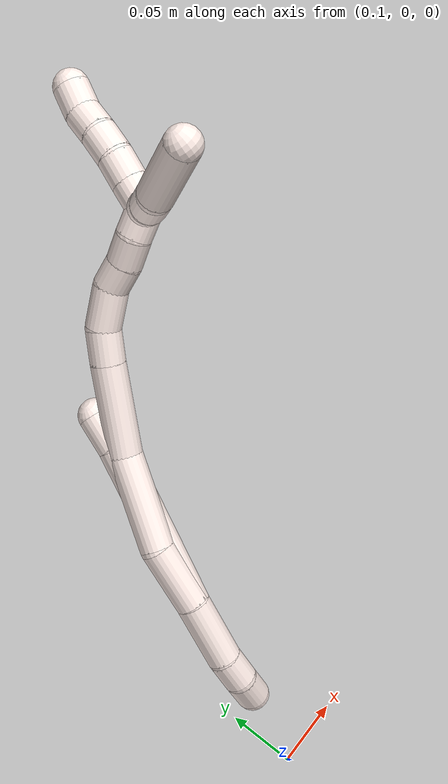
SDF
<sdf version="1.7">
 <world name="default">
  <model name="11">
   <static>0</static>
   <link name="11">
    <collision name="collision-cylinder-e_1_2_8">
     <pose>0.001236 -0.019116 0.036158 0.486339 0.030211 0.007495</pose>
     <geometry><cylinder><radius>0.0125</radius><length>0.081838</length></cylinder></geometry>
     <surface>
      <friction><ode><mu>1.16</mu><mu2>1.16</mu2><slip1>0</slip1><slip2>0</slip2></ode></friction>
      <contact><ode><kp>1e+06</kp><kd>1</kd><max_vel>0</max_vel><min_depth>0.001</min_depth></ode></contact>
     </surface>
    </collision>
    <visual name="visual-cylinder-e_1_2_8">
     <pose>0.001236 -0.019116 0.036158 0.486339 0.030211 0.007495</pose>
     <geometry><cylinder><radius>0.0125</radius><length>0.081838</length></cylinder></geometry>
     <material><ambient>1 0.933333 0.909804 1</ambient></material>
    </visual>
    <collision name="collision-cylinder-e_2_8_9">
     <pose>0.003192 -0.047939 0.090693 0.485926 0.034608 0.008579</pose>
     <geometry><cylinder><radius>0.0125</radius><length>0.04159</length></cylinder></geometry>
     <surface>
      <friction><ode><mu>1.16</mu><mu2>1.16</mu2><slip1>0</slip1><slip2>0</slip2></ode></friction>
      <contact><ode><kp>1e+06</kp><kd>1</kd><max_vel>0</max_vel><min_depth>0.001</min_depth></ode></contact>
     </surface>
    </collision>
    <visual name="visual-cylinder-e_2_8_9">
     <pose>0.003192 -0.047939 0.090693 0.485926 0.034608 0.008579</pose>
     <geometry><cylinder><radius>0.0125</radius><length>0.04159</length></cylinder></geometry>
     <material><ambient>1 0.933333 0.909804 1</ambient></material>
    </visual>
    <collision name="collision-cylinder-e_3_9_6">
     <pose>0.006509 -0.064724 0.120008 0.5744 0.196776 0.058293</pose>
     <geometry><cylinder><radius>0.0125</radius><length>0.026572</length></cylinder></geometry>
     <surface>
      <friction><ode><mu>1.16</mu><mu2>1.16</mu2><slip1>0</slip1><slip2>0</slip2></ode></friction>
      <contact><ode><kp>1e+06</kp><kd>1</kd><max_vel>0</max_vel><min_depth>0.001</min_depth></ode></contact>
     </surface>
    </collision>
    <visual name="visual-cylinder-e_3_9_6">
     <pose>0.006509 -0.064724 0.120008 0.5744 0.196776 0.058293</pose>
     <geometry><cylinder><radius>0.0125</radius><length>0.026572</length></cylinder></geometry>
     <material><ambient>1 0.933333 0.909804 1</ambient></material>
    </visual>
    <collision name="collision-cylinder-e_1_2_10">
     <pose>0.00115 0.006434 -0.024463 -2.8844 0.045418 -0.347739</pose>
     <geometry><cylinder><radius>0.0125</radius><length>0.050643</length></cylinder></geometry>
     <surface>
      <friction><ode><mu>1.16</mu><mu2>1.16</mu2><slip1>0</slip1><slip2>0</slip2></ode></friction>
      <contact><ode><kp>1e+06</kp><kd>1</kd><max_vel>0</max_vel><min_depth>0.001</min_depth></ode></contact>
     </surface>
    </collision>
    <visual name="visual-cylinder-e_1_2_10">
     <pose>0.00115 0.006434 -0.024463 -2.8844 0.045418 -0.347739</pose>
     <geometry><cylinder><radius>0.0125</radius><length>0.050643</length></cylinder></geometry>
     <material><ambient>1 0.933333 0.909804 1</ambient></material>
    </visual>
    <collision name="collision-cylinder-e_2_10_11">
     <pose>0.002708 0.013927 -0.060869 -3.05318 0.034104 -0.735901</pose>
     <geometry><cylinder><radius>0.0125</radius><length>0.023992</length></cylinder></geometry>
     <surface>
      <friction><ode><mu>1.16</mu><mu2>1.16</mu2><slip1>0</slip1><slip2>0</slip2></ode></friction>
      <contact><ode><kp>1e+06</kp><kd>1</kd><max_vel>0</max_vel><min_depth>0.001</min_depth></ode></contact>
     </surface>
    </collision>
    <visual name="visual-cylinder-e_2_10_11">
     <pose>0.002708 0.013927 -0.060869 -3.05318 0.034104 -0.735901</pose>
     <geometry><cylinder><radius>0.0125</radius><length>0.023992</length></cylinder></geometry>
     <material><ambient>1 0.933333 0.909804 1</ambient></material>
    </visual>
    <collision name="collision-cylinder-e_3_11_5">
     <pose>0.005557 0.013061 -0.085107 2.98633 0.193542 1.79048</pose>
     <geometry><cylinder><radius>0.0125</radius><length>0.025366</length></cylinder></geometry>
     <surface>
      <friction><ode><mu>1.16</mu><mu2>1.16</mu2><slip1>0</slip1><slip2>0</slip2></ode></friction>
      <contact><ode><kp>1e+06</kp><kd>1</kd><max_vel>0</max_vel><min_depth>0.001</min_depth></ode></contact>
     </surface>
    </collision>
    <visual name="visual-cylinder-e_3_11_5">
     <pose>0.005557 0.013061 -0.085107 2.98633 0.193542 1.79048</pose>
     <geometry><cylinder><radius>0.0125</radius><length>0.025366</length></cylinder></geometry>
     <material><ambient>1 0.933333 0.909804 1</ambient></material>
    </visual>
    <collision name="collision-cylinder-e_1_2_12">
     <pose>0.001237 -0.007577 0.022953 0.318833 0.051143 0.008224</pose>
     <geometry><cylinder><radius>0.0125</radius><length>0.048405</length></cylinder></geometry>
     <surface>
      <friction><ode><mu>1.16</mu><mu2>1.16</mu2><slip1>0</slip1><slip2>0</slip2></ode></friction>
      <contact><ode><kp>1e+06</kp><kd>1</kd><max_vel>0</max_vel><min_depth>0.001</min_depth></ode></contact>
     </surface>
    </collision>
    <visual name="visual-cylinder-e_1_2_12">
     <pose>0.001237 -0.007577 0.022953 0.318833 0.051143 0.008224</pose>
     <geometry><cylinder><radius>0.0125</radius><length>0.048405</length></cylinder></geometry>
     <material><ambient>1 0.933333 0.909804 1</ambient></material>
    </visual>
    <collision name="collision-cylinder-e_2_12_13">
     <pose>0.000517 -0.034317 0.074768 0.58613 -0.056453 -0.017039</pose>
     <geometry><cylinder><radius>0.0125</radius><length>0.069402</length></cylinder></geometry>
     <surface>
      <friction><ode><mu>1.16</mu><mu2>1.16</mu2><slip1>0</slip1><slip2>0</slip2></ode></friction>
      <contact><ode><kp>1e+06</kp><kd>1</kd><max_vel>0</max_vel><min_depth>0.001</min_depth></ode></contact>
     </surface>
    </collision>
    <visual name="visual-cylinder-e_2_12_13">
     <pose>0.000517 -0.034317 0.074768 0.58613 -0.056453 -0.017039</pose>
     <geometry><cylinder><radius>0.0125</radius><length>0.069402</length></cylinder></geometry>
     <material><ambient>1 0.933333 0.909804 1</ambient></material>
    </visual>
    <collision name="collision-cylinder-e_3_13_14">
     <pose>-0.011155 -0.067713 0.132278 0.461076 -0.294833 -0.069678</pose>
     <geometry><cylinder><radius>0.0125</radius><length>0.066859</length></cylinder></geometry>
     <surface>
      <friction><ode><mu>1.16</mu><mu2>1.16</mu2><slip1>0</slip1><slip2>0</slip2></ode></friction>
      <contact><ode><kp>1e+06</kp><kd>1</kd><max_vel>0</max_vel><min_depth>0.001</min_depth></ode></contact>
     </surface>
    </collision>
    <visual name="visual-cylinder-e_3_13_14">
     <pose>-0.011155 -0.067713 0.132278 0.461076 -0.294833 -0.069678</pose>
     <geometry><cylinder><radius>0.0125</radius><length>0.066859</length></cylinder></geometry>
     <material><ambient>1 0.933333 0.909804 1</ambient></material>
    </visual>
    <collision name="collision-cylinder-e_4_14_15">
     <pose>-0.024982 -0.087069 0.171207 0.462421 -0.343724 -0.08168</pose>
     <geometry><cylinder><radius>0.0125</radius><length>0.024405</length></cylinder></geometry>
     <surface>
      <friction><ode><mu>1.16</mu><mu2>1.16</mu2><slip1>0</slip1><slip2>0</slip2></ode></friction>
      <contact><ode><kp>1e+06</kp><kd>1</kd><max_vel>0</max_vel><min_depth>0.001</min_depth></ode></contact>
     </surface>
    </collision>
    <visual name="visual-cylinder-e_4_14_15">
     <pose>-0.024982 -0.087069 0.171207 0.462421 -0.343724 -0.08168</pose>
     <geometry><cylinder><radius>0.0125</radius><length>0.024405</length></cylinder></geometry>
     <material><ambient>1 0.933333 0.909804 1</ambient></material>
    </visual>
    <collision name="collision-cylinder-e_5_15_16">
     <pose>-0.03848 -0.097895 0.191743 0.507354 -0.674774 -0.181399</pose>
     <geometry><cylinder><radius>0.0125</radius><length>0.030048</length></cylinder></geometry>
     <surface>
      <friction><ode><mu>1.16</mu><mu2>1.16</mu2><slip1>0</slip1><slip2>0</slip2></ode></friction>
      <contact><ode><kp>1e+06</kp><kd>1</kd><max_vel>0</max_vel><min_depth>0.001</min_depth></ode></contact>
     </surface>
    </collision>
    <visual name="visual-cylinder-e_5_15_16">
     <pose>-0.03848 -0.097895 0.191743 0.507354 -0.674774 -0.181399</pose>
     <geometry><cylinder><radius>0.0125</radius><length>0.030048</length></cylinder></geometry>
     <material><ambient>1 0.933333 0.909804 1</ambient></material>
    </visual>
    <collision name="collision-cylinder-e_6_16_17">
     <pose>-0.056388 -0.105583 0.206971 0.380287 -1.0096 -0.211901</pose>
     <geometry><cylinder><radius>0.0125</radius><length>0.020134</length></cylinder></geometry>
     <surface>
      <friction><ode><mu>1.16</mu><mu2>1.16</mu2><slip1>0</slip1><slip2>0</slip2></ode></friction>
      <contact><ode><kp>1e+06</kp><kd>1</kd><max_vel>0</max_vel><min_depth>0.001</min_depth></ode></contact>
     </surface>
    </collision>
    <visual name="visual-cylinder-e_6_16_17">
     <pose>-0.056388 -0.105583 0.206971 0.380287 -1.0096 -0.211901</pose>
     <geometry><cylinder><radius>0.0125</radius><length>0.020134</length></cylinder></geometry>
     <material><ambient>1 0.933333 0.909804 1</ambient></material>
    </visual>
    <collision name="collision-cylinder-e_7_17_18">
     <pose>-0.07275 -0.109645 0.218389 0.311266 -0.858554 -0.143396</pose>
     <geometry><cylinder><radius>0.0125</radius><length>0.020713</length></cylinder></geometry>
     <surface>
      <friction><ode><mu>1.16</mu><mu2>1.16</mu2><slip1>0</slip1><slip2>0</slip2></ode></friction>
      <contact><ode><kp>1e+06</kp><kd>1</kd><max_vel>0</max_vel><min_depth>0.001</min_depth></ode></contact>
     </surface>
    </collision>
    <visual name="visual-cylinder-e_7_17_18">
     <pose>-0.07275 -0.109645 0.218389 0.311266 -0.858554 -0.143396</pose>
     <geometry><cylinder><radius>0.0125</radius><length>0.020713</length></cylinder></geometry>
     <material><ambient>1 0.933333 0.909804 1</ambient></material>
    </visual>
    <collision name="collision-cylinder-e_8_18_1">
     <pose>-0.088117 -0.115491 0.230257 0.607698 -0.850404 -0.28209</pose>
     <geometry><cylinder><radius>0.0125</radius><length>0.020034</length></cylinder></geometry>
     <surface>
      <friction><ode><mu>1.16</mu><mu2>1.16</mu2><slip1>0</slip1><slip2>0</slip2></ode></friction>
      <contact><ode><kp>1e+06</kp><kd>1</kd><max_vel>0</max_vel><min_depth>0.001</min_depth></ode></contact>
     </surface>
    </collision>
    <visual name="visual-cylinder-e_8_18_1">
     <pose>-0.088117 -0.115491 0.230257 0.607698 -0.850404 -0.28209</pose>
     <geometry><cylinder><radius>0.0125</radius><length>0.020034</length></cylinder></geometry>
     <material><ambient>1 0.933333 0.909804 1</ambient></material>
    </visual>
    <collision name="collision-cylinder-e_1_1_19">
     <pose>-0.093195 -0.12566 0.242968 0.720546 0.247546 0.093665</pose>
     <geometry><cylinder><radius>0.0125</radius><length>0.02</length></cylinder></geometry>
     <surface>
      <friction><ode><mu>1.16</mu><mu2>1.16</mu2><slip1>0</slip1><slip2>0</slip2></ode></friction>
      <contact><ode><kp>1e+06</kp><kd>1</kd><max_vel>0</max_vel><min_depth>0.001</min_depth></ode></contact>
     </surface>
    </collision>
    <visual name="visual-cylinder-e_1_1_19">
     <pose>-0.093195 -0.12566 0.242968 0.720546 0.247546 0.093665</pose>
     <geometry><cylinder><radius>0.0125</radius><length>0.02</length></cylinder></geometry>
     <material><ambient>1 0.933333 0.909804 1</ambient></material>
    </visual>
    <collision name="collision-cylinder-e_2_19_20">
     <pose>-0.088795 -0.138017 0.258043 0.653083 0.196228 0.066645</pose>
     <geometry><cylinder><radius>0.0125</radius><length>0.02</length></cylinder></geometry>
     <surface>
      <friction><ode><mu>1.16</mu><mu2>1.16</mu2><slip1>0</slip1><slip2>0</slip2></ode></friction>
      <contact><ode><kp>1e+06</kp><kd>1</kd><max_vel>0</max_vel><min_depth>0.001</min_depth></ode></contact>
     </surface>
    </collision>
    <visual name="visual-cylinder-e_2_19_20">
     <pose>-0.088795 -0.138017 0.258043 0.653083 0.196228 0.066645</pose>
     <geometry><cylinder><radius>0.0125</radius><length>0.02</length></cylinder></geometry>
     <material><ambient>1 0.933333 0.909804 1</ambient></material>
    </visual>
    <collision name="collision-cylinder-e_3_20_21">
     <pose>-0.083541 -0.150584 0.272572 0.77548 0.336747 0.138625</pose>
     <geometry><cylinder><radius>0.0125</radius><length>0.02</length></cylinder></geometry>
     <surface>
      <friction><ode><mu>1.16</mu><mu2>1.16</mu2><slip1>0</slip1><slip2>0</slip2></ode></friction>
      <contact><ode><kp>1e+06</kp><kd>1</kd><max_vel>0</max_vel><min_depth>0.001</min_depth></ode></contact>
     </surface>
    </collision>
    <visual name="visual-cylinder-e_3_20_21">
     <pose>-0.083541 -0.150584 0.272572 0.77548 0.336747 0.138625</pose>
     <geometry><cylinder><radius>0.0125</radius><length>0.02</length></cylinder></geometry>
     <material><ambient>1 0.933333 0.909804 1</ambient></material>
    </visual>
    <collision name="collision-cylinder-e_4_21_22">
     <pose>-0.076052 -0.164433 0.284794 0.922774 0.431782 0.217213</pose>
     <geometry><cylinder><radius>0.0125</radius><length>0.02</length></cylinder></geometry>
     <surface>
      <friction><ode><mu>1.16</mu><mu2>1.16</mu2><slip1>0</slip1><slip2>0</slip2></ode></friction>
      <contact><ode><kp>1e+06</kp><kd>1</kd><max_vel>0</max_vel><min_depth>0.001</min_depth></ode></contact>
     </surface>
    </collision>
    <visual name="visual-cylinder-e_4_21_22">
     <pose>-0.076052 -0.164433 0.284794 0.922774 0.431782 0.217213</pose>
     <geometry><cylinder><radius>0.0125</radius><length>0.02</length></cylinder></geometry>
     <material><ambient>1 0.933333 0.909804 1</ambient></material>
    </visual>
    <collision name="collision-cylinder-e_5_22_4">
     <pose>-0.070517 -0.178412 0.29754 0.747887 0.135375 0.053191</pose>
     <geometry><cylinder><radius>0.0125</radius><length>0.02</length></cylinder></geometry>
     <surface>
      <friction><ode><mu>1.16</mu><mu2>1.16</mu2><slip1>0</slip1><slip2>0</slip2></ode></friction>
      <contact><ode><kp>1e+06</kp><kd>1</kd><max_vel>0</max_vel><min_depth>0.001</min_depth></ode></contact>
     </surface>
    </collision>
    <visual name="visual-cylinder-e_5_22_4">
     <pose>-0.070517 -0.178412 0.29754 0.747887 0.135375 0.053191</pose>
     <geometry><cylinder><radius>0.0125</radius><length>0.02</length></cylinder></geometry>
     <material><ambient>1 0.933333 0.909804 1</ambient></material>
    </visual>
    <collision name="collision-cylinder-e_1_1_23">
     <pose>-0.102553 -0.10964 0.240688 -1.09115 -0.567065 0.350136</pose>
     <geometry><cylinder><radius>0.0125</radius><length>0.025721</length></cylinder></geometry>
     <surface>
      <friction><ode><mu>1.16</mu><mu2>1.16</mu2><slip1>0</slip1><slip2>0</slip2></ode></friction>
      <contact><ode><kp>1e+06</kp><kd>1</kd><max_vel>0</max_vel><min_depth>0.001</min_depth></ode></contact>
     </surface>
    </collision>
    <visual name="visual-cylinder-e_1_1_23">
     <pose>-0.102553 -0.10964 0.240688 -1.09115 -0.567065 0.350136</pose>
     <geometry><cylinder><radius>0.0125</radius><length>0.025721</length></cylinder></geometry>
     <material><ambient>1 0.933333 0.909804 1</ambient></material>
    </visual>
    <collision name="collision-cylinder-e_2_23_24">
     <pose>-0.116739 -0.093868 0.250972 -0.861423 -0.731754 0.34851</pose>
     <geometry><cylinder><radius>0.0125</radius><length>0.021783</length></cylinder></geometry>
     <surface>
      <friction><ode><mu>1.16</mu><mu2>1.16</mu2><slip1>0</slip1><slip2>0</slip2></ode></friction>
      <contact><ode><kp>1e+06</kp><kd>1</kd><max_vel>0</max_vel><min_depth>0.001</min_depth></ode></contact>
     </surface>
    </collision>
    <visual name="visual-cylinder-e_2_23_24">
     <pose>-0.116739 -0.093868 0.250972 -0.861423 -0.731754 0.34851</pose>
     <geometry><cylinder><radius>0.0125</radius><length>0.021783</length></cylinder></geometry>
     <material><ambient>1 0.933333 0.909804 1</ambient></material>
    </visual>
    <collision name="collision-cylinder-e_3_24_3">
     <pose>-0.144946 -0.080935 0.270564 -0.44264 -0.922942 0.222856</pose>
     <geometry><cylinder><radius>0.0125</radius><length>0.052496</length></cylinder></geometry>
     <surface>
      <friction><ode><mu>1.16</mu><mu2>1.16</mu2><slip1>0</slip1><slip2>0</slip2></ode></friction>
      <contact><ode><kp>1e+06</kp><kd>1</kd><max_vel>0</max_vel><min_depth>0.001</min_depth></ode></contact>
     </surface>
    </collision>
    <visual name="visual-cylinder-e_3_24_3">
     <pose>-0.144946 -0.080935 0.270564 -0.44264 -0.922942 0.222856</pose>
     <geometry><cylinder><radius>0.0125</radius><length>0.052496</length></cylinder></geometry>
     <material><ambient>1 0.933333 0.909804 1</ambient></material>
    </visual>
    <collision name="collision-sphere-3">
     <pose>-0.165876 -0.07415 0.284877 0 -0 0</pose>
     <geometry><sphere><radius>0.0125</radius></sphere></geometry>
     <surface>
      <friction><ode><mu>1.16</mu><mu2>1.16</mu2><slip1>0</slip1><slip2>0</slip2></ode></friction>
      <contact><ode><kp>1e+06</kp><kd>1</kd><max_vel>0</max_vel><min_depth>0.001</min_depth></ode></contact>
     </surface>
    </collision>
    <visual name="visual-sphere-3">
     <pose>-0.165876 -0.07415 0.284877 0 -0 0</pose>
     <geometry><sphere><radius>0.0125</radius></sphere></geometry>
     <material><ambient>1 0.933333 0.909804 1</ambient></material>
    </visual>
    <collision name="collision-sphere-24">
     <pose>-0.124016 -0.08772 0.25625 0 -0 0</pose>
     <geometry><sphere><radius>0.0125</radius></sphere></geometry>
     <surface>
      <friction><ode><mu>1.16</mu><mu2>1.16</mu2><slip1>0</slip1><slip2>0</slip2></ode></friction>
      <contact><ode><kp>1e+06</kp><kd>1</kd><max_vel>0</max_vel><min_depth>0.001</min_depth></ode></contact>
     </surface>
    </collision>
    <visual name="visual-sphere-24">
     <pose>-0.124016 -0.08772 0.25625 0 -0 0</pose>
     <geometry><sphere><radius>0.0125</radius></sphere></geometry>
     <material><ambient>1 0.933333 0.909804 1</ambient></material>
    </visual>
    <collision name="collision-sphere-23">
     <pose>-0.109461 -0.100017 0.245694 0 -0 0</pose>
     <geometry><sphere><radius>0.0125</radius></sphere></geometry>
     <surface>
      <friction><ode><mu>1.16</mu><mu2>1.16</mu2><slip1>0</slip1><slip2>0</slip2></ode></friction>
      <contact><ode><kp>1e+06</kp><kd>1</kd><max_vel>0</max_vel><min_depth>0.001</min_depth></ode></contact>
     </surface>
    </collision>
    <visual name="visual-sphere-23">
     <pose>-0.109461 -0.100017 0.245694 0 -0 0</pose>
     <geometry><sphere><radius>0.0125</radius></sphere></geometry>
     <material><ambient>1 0.933333 0.909804 1</ambient></material>
    </visual>
    <collision name="collision-sphere-4">
     <pose>-0.069168 -0.185151 0.304805 0 -0 0</pose>
     <geometry><sphere><radius>0.0125</radius></sphere></geometry>
     <surface>
      <friction><ode><mu>1.16</mu><mu2>1.16</mu2><slip1>0</slip1><slip2>0</slip2></ode></friction>
      <contact><ode><kp>1e+06</kp><kd>1</kd><max_vel>0</max_vel><min_depth>0.001</min_depth></ode></contact>
     </surface>
    </collision>
    <visual name="visual-sphere-4">
     <pose>-0.069168 -0.185151 0.304805 0 -0 0</pose>
     <geometry><sphere><radius>0.0125</radius></sphere></geometry>
     <material><ambient>1 0.933333 0.909804 1</ambient></material>
    </visual>
    <collision name="collision-sphere-22">
     <pose>-0.071867 -0.171674 0.290276 0 -0 0</pose>
     <geometry><sphere><radius>0.0125</radius></sphere></geometry>
     <surface>
      <friction><ode><mu>1.16</mu><mu2>1.16</mu2><slip1>0</slip1><slip2>0</slip2></ode></friction>
      <contact><ode><kp>1e+06</kp><kd>1</kd><max_vel>0</max_vel><min_depth>0.001</min_depth></ode></contact>
     </surface>
    </collision>
    <visual name="visual-sphere-22">
     <pose>-0.071867 -0.171674 0.290276 0 -0 0</pose>
     <geometry><sphere><radius>0.0125</radius></sphere></geometry>
     <material><ambient>1 0.933333 0.909804 1</ambient></material>
    </visual>
    <collision name="collision-sphere-21">
     <pose>-0.080237 -0.157192 0.279312 0 -0 0</pose>
     <geometry><sphere><radius>0.0125</radius></sphere></geometry>
     <surface>
      <friction><ode><mu>1.16</mu><mu2>1.16</mu2><slip1>0</slip1><slip2>0</slip2></ode></friction>
      <contact><ode><kp>1e+06</kp><kd>1</kd><max_vel>0</max_vel><min_depth>0.001</min_depth></ode></contact>
     </surface>
    </collision>
    <visual name="visual-sphere-21">
     <pose>-0.080237 -0.157192 0.279312 0 -0 0</pose>
     <geometry><sphere><radius>0.0125</radius></sphere></geometry>
     <material><ambient>1 0.933333 0.909804 1</ambient></material>
    </visual>
    <collision name="collision-sphere-20">
     <pose>-0.086845 -0.143977 0.265832 0 -0 0</pose>
     <geometry><sphere><radius>0.0125</radius></sphere></geometry>
     <surface>
      <friction><ode><mu>1.16</mu><mu2>1.16</mu2><slip1>0</slip1><slip2>0</slip2></ode></friction>
      <contact><ode><kp>1e+06</kp><kd>1</kd><max_vel>0</max_vel><min_depth>0.001</min_depth></ode></contact>
     </surface>
    </collision>
    <visual name="visual-sphere-20">
     <pose>-0.086845 -0.143977 0.265832 0 -0 0</pose>
     <geometry><sphere><radius>0.0125</radius></sphere></geometry>
     <material><ambient>1 0.933333 0.909804 1</ambient></material>
    </visual>
    <collision name="collision-sphere-11">
     <pose>0.003117 0.014986 -0.07281 0 -0 0</pose>
     <geometry><sphere><radius>0.0125</radius></sphere></geometry>
     <surface>
      <friction><ode><mu>1.16</mu><mu2>1.16</mu2><slip1>0</slip1><slip2>0</slip2></ode></friction>
      <contact><ode><kp>1e+06</kp><kd>1</kd><max_vel>0</max_vel><min_depth>0.001</min_depth></ode></contact>
     </surface>
    </collision>
    <visual name="visual-sphere-11">
     <pose>0.003117 0.014986 -0.07281 0 -0 0</pose>
     <geometry><sphere><radius>0.0125</radius></sphere></geometry>
     <material><ambient>1 0.933333 0.909804 1</ambient></material>
    </visual>
    <collision name="collision-sphere-10">
     <pose>0.002299 0.012869 -0.048927 0 -0 0</pose>
     <geometry><sphere><radius>0.0125</radius></sphere></geometry>
     <surface>
      <friction><ode><mu>1.16</mu><mu2>1.16</mu2><slip1>0</slip1><slip2>0</slip2></ode></friction>
      <contact><ode><kp>1e+06</kp><kd>1</kd><max_vel>0</max_vel><min_depth>0.001</min_depth></ode></contact>
     </surface>
    </collision>
    <visual name="visual-sphere-10">
     <pose>0.002299 0.012869 -0.048927 0 -0 0</pose>
     <geometry><sphere><radius>0.0125</radius></sphere></geometry>
     <material><ambient>1 0.933333 0.909804 1</ambient></material>
    </visual>
    <collision name="collision-sphere-6">
     <pose>0.009106 -0.071804 0.130947 0 -0 0</pose>
     <geometry><sphere><radius>0.0125</radius></sphere></geometry>
     <surface>
      <friction><ode><mu>1.16</mu><mu2>1.16</mu2><slip1>0</slip1><slip2>0</slip2></ode></friction>
      <contact><ode><kp>1e+06</kp><kd>1</kd><max_vel>0</max_vel><min_depth>0.001</min_depth></ode></contact>
     </surface>
    </collision>
    <visual name="visual-sphere-6">
     <pose>0.009106 -0.071804 0.130947 0 -0 0</pose>
     <geometry><sphere><radius>0.0125</radius></sphere></geometry>
     <material><ambient>1 0.933333 0.909804 1</ambient></material>
    </visual>
    <collision name="collision-sphere-9">
     <pose>0.003911 -0.057645 0.109069 0 -0 0</pose>
     <geometry><sphere><radius>0.0125</radius></sphere></geometry>
     <surface>
      <friction><ode><mu>1.16</mu><mu2>1.16</mu2><slip1>0</slip1><slip2>0</slip2></ode></friction>
      <contact><ode><kp>1e+06</kp><kd>1</kd><max_vel>0</max_vel><min_depth>0.001</min_depth></ode></contact>
     </surface>
    </collision>
    <visual name="visual-sphere-9">
     <pose>0.003911 -0.057645 0.109069 0 -0 0</pose>
     <geometry><sphere><radius>0.0125</radius></sphere></geometry>
     <material><ambient>1 0.933333 0.909804 1</ambient></material>
    </visual>
    <collision name="collision-sphere-2">
     <geometry><sphere><radius>0.0125</radius></sphere></geometry>
     <surface>
      <friction><ode><mu>1.16</mu><mu2>1.16</mu2><slip1>0</slip1><slip2>0</slip2></ode></friction>
      <contact><ode><kp>1e+06</kp><kd>1</kd><max_vel>0</max_vel><min_depth>0.001</min_depth></ode></contact>
     </surface>
    </collision>
    <visual name="visual-sphere-2">
     <geometry><sphere><radius>0.0125</radius></sphere></geometry>
     <material><ambient>1 0.933333 0.909804 1</ambient></material>
    </visual>
    <collision name="collision-sphere-19">
     <pose>-0.090745 -0.132057 0.250253 0 -0 0</pose>
     <geometry><sphere><radius>0.0125</radius></sphere></geometry>
     <surface>
      <friction><ode><mu>1.16</mu><mu2>1.16</mu2><slip1>0</slip1><slip2>0</slip2></ode></friction>
      <contact><ode><kp>1e+06</kp><kd>1</kd><max_vel>0</max_vel><min_depth>0.001</min_depth></ode></contact>
     </surface>
    </collision>
    <visual name="visual-sphere-19">
     <pose>-0.090745 -0.132057 0.250253 0 -0 0</pose>
     <geometry><sphere><radius>0.0125</radius></sphere></geometry>
     <material><ambient>1 0.933333 0.909804 1</ambient></material>
    </visual>
    <collision name="collision-sphere-8">
     <pose>0.002472 -0.038233 0.072316 0 -0 0</pose>
     <geometry><sphere><radius>0.0125</radius></sphere></geometry>
     <surface>
      <friction><ode><mu>1.16</mu><mu2>1.16</mu2><slip1>0</slip1><slip2>0</slip2></ode></friction>
      <contact><ode><kp>1e+06</kp><kd>1</kd><max_vel>0</max_vel><min_depth>0.001</min_depth></ode></contact>
     </surface>
    </collision>
    <visual name="visual-sphere-8">
     <pose>0.002472 -0.038233 0.072316 0 -0 0</pose>
     <geometry><sphere><radius>0.0125</radius></sphere></geometry>
     <material><ambient>1 0.933333 0.909804 1</ambient></material>
    </visual>
    <collision name="collision-sphere-5">
     <pose>0.007996 0.011137 -0.097403 0 -0 0</pose>
     <geometry><sphere><radius>0.0125</radius></sphere></geometry>
     <surface>
      <friction><ode><mu>1.16</mu><mu2>1.16</mu2><slip1>0</slip1><slip2>0</slip2></ode></friction>
      <contact><ode><kp>1e+06</kp><kd>1</kd><max_vel>0</max_vel><min_depth>0.001</min_depth></ode></contact>
     </surface>
    </collision>
    <visual name="visual-sphere-5">
     <pose>0.007996 0.011137 -0.097403 0 -0 0</pose>
     <geometry><sphere><radius>0.0125</radius></sphere></geometry>
     <material><ambient>1 0.933333 0.909804 1</ambient></material>
    </visual>
    <collision name="collision-sphere-12">
     <pose>0.002474 -0.015153 0.045905 0 -0 0</pose>
     <geometry><sphere><radius>0.0125</radius></sphere></geometry>
     <surface>
      <friction><ode><mu>1.16</mu><mu2>1.16</mu2><slip1>0</slip1><slip2>0</slip2></ode></friction>
      <contact><ode><kp>1e+06</kp><kd>1</kd><max_vel>0</max_vel><min_depth>0.001</min_depth></ode></contact>
     </surface>
    </collision>
    <visual name="visual-sphere-12">
     <pose>0.002474 -0.015153 0.045905 0 -0 0</pose>
     <geometry><sphere><radius>0.0125</radius></sphere></geometry>
     <material><ambient>1 0.933333 0.909804 1</ambient></material>
    </visual>
    <collision name="collision-sphere-13">
     <pose>-0.001441 -0.053481 0.103631 0 -0 0</pose>
     <geometry><sphere><radius>0.0125</radius></sphere></geometry>
     <surface>
      <friction><ode><mu>1.16</mu><mu2>1.16</mu2><slip1>0</slip1><slip2>0</slip2></ode></friction>
      <contact><ode><kp>1e+06</kp><kd>1</kd><max_vel>0</max_vel><min_depth>0.001</min_depth></ode></contact>
     </surface>
    </collision>
    <visual name="visual-sphere-13">
     <pose>-0.001441 -0.053481 0.103631 0 -0 0</pose>
     <geometry><sphere><radius>0.0125</radius></sphere></geometry>
     <material><ambient>1 0.933333 0.909804 1</ambient></material>
    </visual>
    <collision name="collision-sphere-14">
     <pose>-0.020869 -0.081944 0.160925 0 -0 0</pose>
     <geometry><sphere><radius>0.0125</radius></sphere></geometry>
     <surface>
      <friction><ode><mu>1.16</mu><mu2>1.16</mu2><slip1>0</slip1><slip2>0</slip2></ode></friction>
      <contact><ode><kp>1e+06</kp><kd>1</kd><max_vel>0</max_vel><min_depth>0.001</min_depth></ode></contact>
     </surface>
    </collision>
    <visual name="visual-sphere-14">
     <pose>-0.020869 -0.081944 0.160925 0 -0 0</pose>
     <geometry><sphere><radius>0.0125</radius></sphere></geometry>
     <material><ambient>1 0.933333 0.909804 1</ambient></material>
    </visual>
    <collision name="collision-sphere-15">
     <pose>-0.029094 -0.092195 0.181489 0 -0 0</pose>
     <geometry><sphere><radius>0.0125</radius></sphere></geometry>
     <surface>
      <friction><ode><mu>1.16</mu><mu2>1.16</mu2><slip1>0</slip1><slip2>0</slip2></ode></friction>
      <contact><ode><kp>1e+06</kp><kd>1</kd><max_vel>0</max_vel><min_depth>0.001</min_depth></ode></contact>
     </surface>
    </collision>
    <visual name="visual-sphere-15">
     <pose>-0.029094 -0.092195 0.181489 0 -0 0</pose>
     <geometry><sphere><radius>0.0125</radius></sphere></geometry>
     <material><ambient>1 0.933333 0.909804 1</ambient></material>
    </visual>
    <collision name="collision-sphere-16">
     <pose>-0.047865 -0.103594 0.201996 0 -0 0</pose>
     <geometry><sphere><radius>0.0125</radius></sphere></geometry>
     <surface>
      <friction><ode><mu>1.16</mu><mu2>1.16</mu2><slip1>0</slip1><slip2>0</slip2></ode></friction>
      <contact><ode><kp>1e+06</kp><kd>1</kd><max_vel>0</max_vel><min_depth>0.001</min_depth></ode></contact>
     </surface>
    </collision>
    <visual name="visual-sphere-16">
     <pose>-0.047865 -0.103594 0.201996 0 -0 0</pose>
     <geometry><sphere><radius>0.0125</radius></sphere></geometry>
     <material><ambient>1 0.933333 0.909804 1</ambient></material>
    </visual>
    <collision name="collision-sphere-17">
     <pose>-0.064911 -0.107572 0.211946 0 -0 0</pose>
     <geometry><sphere><radius>0.0125</radius></sphere></geometry>
     <surface>
      <friction><ode><mu>1.16</mu><mu2>1.16</mu2><slip1>0</slip1><slip2>0</slip2></ode></friction>
      <contact><ode><kp>1e+06</kp><kd>1</kd><max_vel>0</max_vel><min_depth>0.001</min_depth></ode></contact>
     </surface>
    </collision>
    <visual name="visual-sphere-17">
     <pose>-0.064911 -0.107572 0.211946 0 -0 0</pose>
     <geometry><sphere><radius>0.0125</radius></sphere></geometry>
     <material><ambient>1 0.933333 0.909804 1</ambient></material>
    </visual>
    <collision name="collision-sphere-18">
     <pose>-0.080589 -0.111718 0.224832 0 -0 0</pose>
     <geometry><sphere><radius>0.0125</radius></sphere></geometry>
     <surface>
      <friction><ode><mu>1.16</mu><mu2>1.16</mu2><slip1>0</slip1><slip2>0</slip2></ode></friction>
      <contact><ode><kp>1e+06</kp><kd>1</kd><max_vel>0</max_vel><min_depth>0.001</min_depth></ode></contact>
     </surface>
    </collision>
    <visual name="visual-sphere-18">
     <pose>-0.080589 -0.111718 0.224832 0 -0 0</pose>
     <geometry><sphere><radius>0.0125</radius></sphere></geometry>
     <material><ambient>1 0.933333 0.909804 1</ambient></material>
    </visual>
    <collision name="collision-sphere-1">
     <pose>-0.095645 -0.119264 0.235682 0 -0 0</pose>
     <geometry><sphere><radius>0.0125</radius></sphere></geometry>
     <surface>
      <friction><ode><mu>1.16</mu><mu2>1.16</mu2><slip1>0</slip1><slip2>0</slip2></ode></friction>
      <contact><ode><kp>1e+06</kp><kd>1</kd><max_vel>0</max_vel><min_depth>0.001</min_depth></ode></contact>
     </surface>
    </collision>
    <visual name="visual-sphere-1">
     <pose>-0.095645 -0.119264 0.235682 0 -0 0</pose>
     <geometry><sphere><radius>0.0125</radius></sphere></geometry>
     <material><ambient>1 0.933333 0.909804 1</ambient></material>
    </visual>
    <inertial>
     <pose>-0.036246 -0.06346 0.128572 0 -0 0</pose>
     <mass>0.75</mass>
     <inertia>
      <ixx>0.000154</ixx>
      <ixy>0</ixy>
      <ixz>0</ixz>
      <iyy>0.000113</iyy>
      <iyz>0</iyz>
      <izz>0.000113</izz>
     </inertia>
    </inertial>
   </link>
   <pose>0.141566 0.123215 0.097739 0.663059 0.551851 2.45341</pose>
  </model>
 </world>
</sdf>
